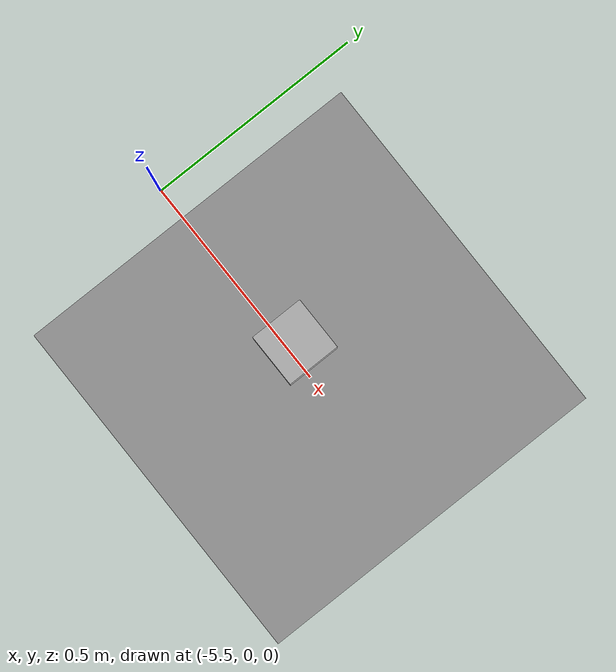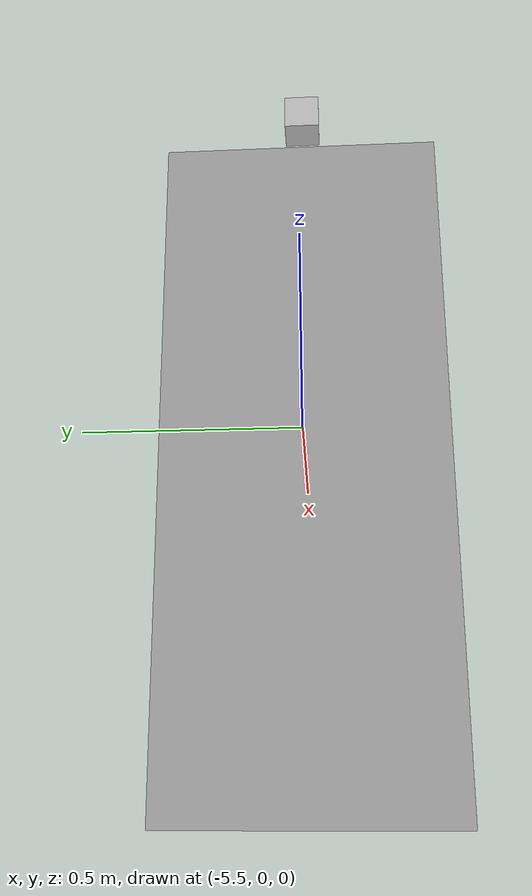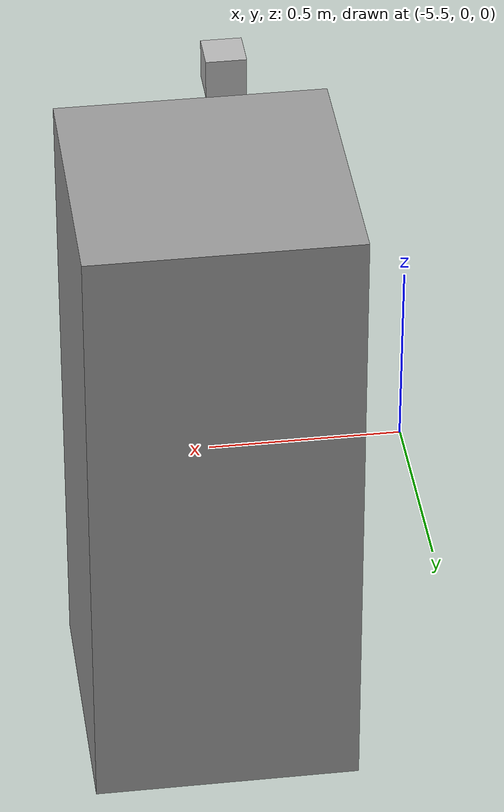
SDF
<?xml version='1.0'?>
<sdf version='1.7'>
  <model name="big_gun">
    <static>1</static>
    <allow_auto_disable>1</allow_auto_disable>
    <pose>-5 0 0 0 0 0</pose>
    <link name="main">
      <pose>0 0 0 0 0 0</pose>
      <self_collide>0</self_collide>
      <inertial>
        <pose>0 0 0 0 0 0</pose>
        <inertia>
          <ixx>1</ixx>
          <ixy>0</ixy>
          <ixz>0</ixz>
          <iyy>1</iyy>
          <iyz>0</iyz>
          <izz>1</izz>
        </inertia>
        <mass>1000</mass>
      </inertial>
      <enable_wind>0</enable_wind>
      <kinematic>0</kinematic>
      <visual name='visual'>
        <geometry>
          <box>
            <size>.7 1.7 .7</size>
          </box>
        </geometry>
        <material>
          <script>
            <name>Gazebo/Grey</name>
            <uri>file://media/materials/scripts/gazebo.material</uri>
          </script>
          <shader type='pixel'>
            <normal_map>__default__</normal_map>
          </shader>
          <ambient>0.3 0.3 0.3 1</ambient>
          <diffuse>0.7 0.7 0.7 1</diffuse>
          <specular>0.01 0.01 0.01 1</specular>
          <emissive>0 0 0 1</emissive>
        </material>
        <pose>0 0 0 1.57 0 3.14</pose>
        <transparency>0</transparency>
        <cast_shadows>1</cast_shadows>
      </visual>
      <collision name='collision'>
        <laser_retro>0</laser_retro>
        <max_contacts>10</max_contacts>
        <pose>0 0 0.75 0 0 0</pose>
        <geometry>
          <box>
            <size>.8 .7 1</size>
          </box>
        </geometry>
      </collision>
    </link>

    <link name="bullet_spawner">
      <pose>.5 0 .95 0 0 0</pose>
    </link>

    <joint name="bullet_spawner_joint" type="fixed">
      <parent>main</parent>
      <child>bullet_spawner</child>
    </joint>

    <include>
      <uri>model://camera</uri>
      <pose>-0.04 0 1.16 0 0 0</pose>
    </include>

    <joint name="camera_joint" type="fixed">
      <parent>main</parent>
      <child>camera::link</child>
    </joint>

    <plugin name="GunPlugin" filename="libGunPlugin.so">
      <model name="olive"/>
    </plugin>
  </model>
</sdf>

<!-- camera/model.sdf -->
<sdf version="1.5">
  <model name="camera">
    <pose>0 0 0.05 0 0 0</pose>
    <link name="link">
      <inertial>
        <mass>0.1</mass>
        <inertia>
          <ixx>0.000166667</ixx>
          <iyy>0.000166667</iyy>
          <izz>0.000166667</izz>
        </inertia>
      </inertial>
      <collision name="collision">
        <geometry>
          <box>
            <size>0.1 0.1 0.1</size>
          </box>
        </geometry>
      </collision>
      <visual name="visual">
        <geometry>
          <box>
            <size>0.1 0.1 0.1</size>
          </box>
        </geometry>
      </visual>
      <sensor name="camera" type="camera">
        <camera>
          <horizontal_fov>1.047</horizontal_fov>
          <image>
            <width>320</width>
            <height>240</height>
          </image>
          <clip>
            <near>0.1</near>
            <far>100</far>
          </clip>
        </camera>
        <always_on>1</always_on>
        <update_rate>30</update_rate>
        <visualize>true</visualize>
      </sensor>
    </link>
  </model>
</sdf>
